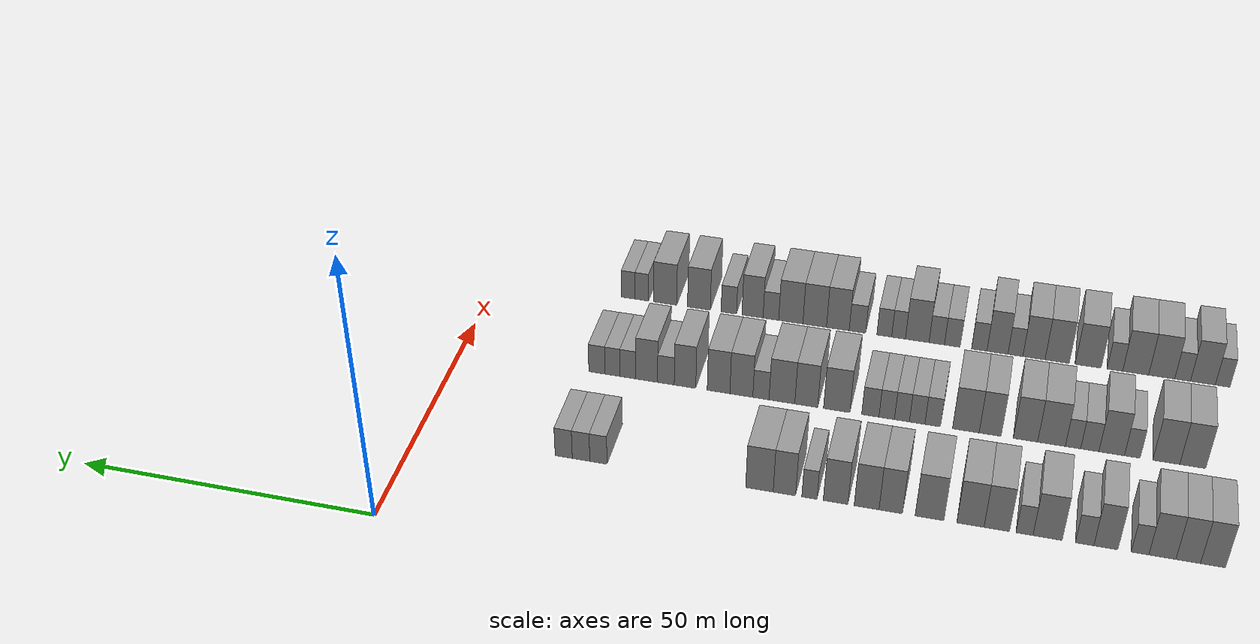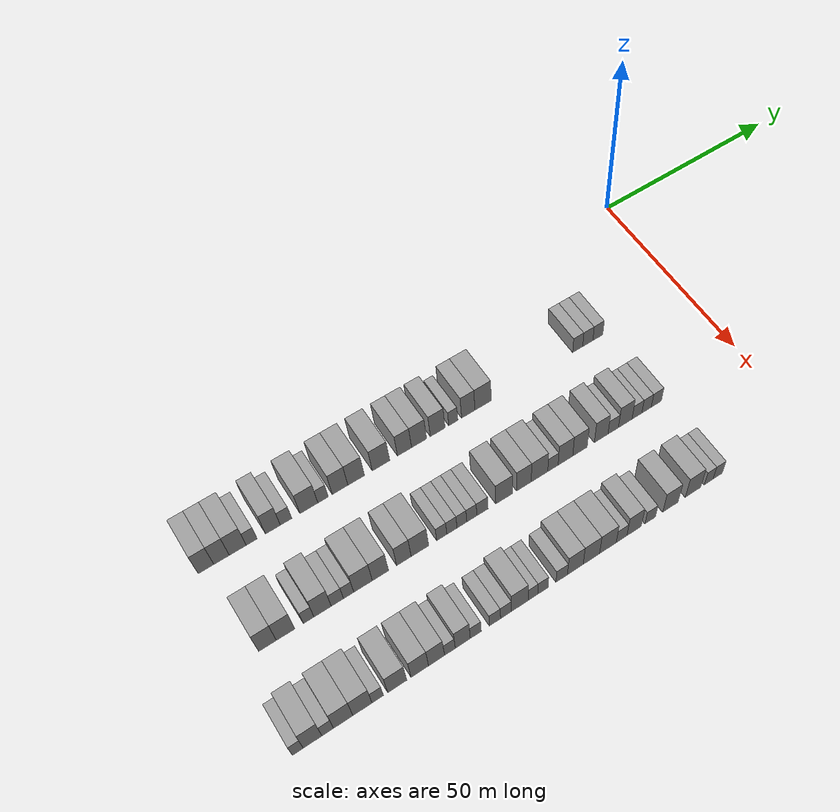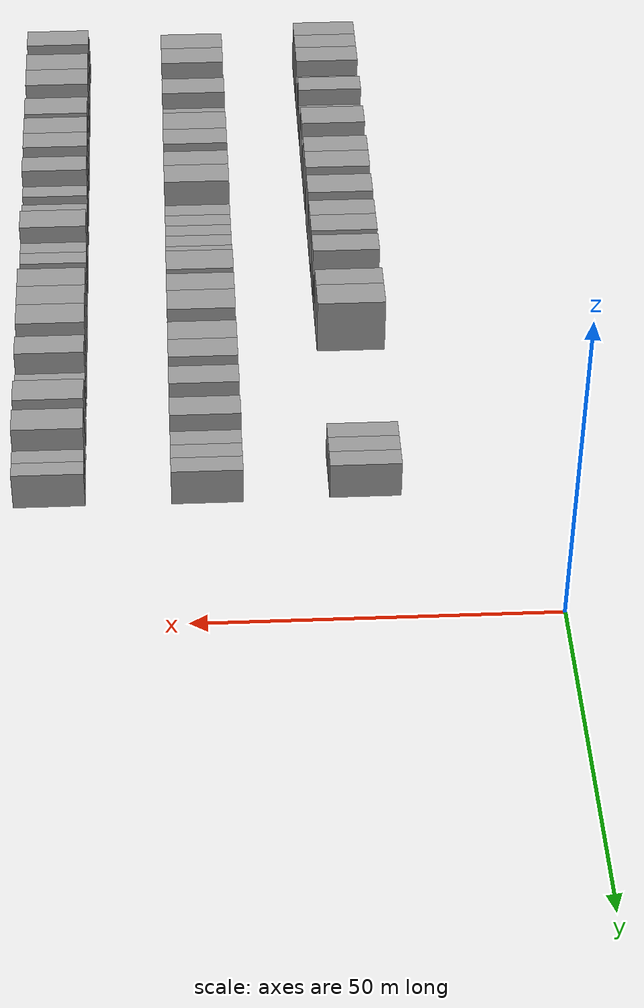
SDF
<sdf version="1.6">
 <world name="default">
  <model name="building_69">
   <static>1</static>
   <pose>25.0000 -127.5275 0 0.000000 0.000000 0.000000</pose>
   <link name="link">
    <pose>0 0 4.50 0 0 0</pose>
    <collision name="collision"><geometry><box><size>10.0000 3.6761 9.0000</size></box></geometry></collision>
    <visual name="visual">
     <cast_shadows>0</cast_shadows>
     <geometry><box><size>10.0000 3.6761 9.0000</size></box></geometry>
     <material>
      <script>
       <uri>model://grey_wall/materials/scripts</uri>
       <uri>model://grey_wall/materials/textures</uri>
       <name>vrc/grey_wall</name>
      </script>
     </material>
    </visual>
   </link>
  </model>
  <model name="building_70">
   <static>1</static>
   <pose>25.0000 -123.8749 0 0.000000 0.000000 0.000000</pose>
   <link name="link">
    <pose>0 0 4.50 0 0 0</pose>
    <collision name="collision"><geometry><box><size>10.0000 3.6291 9.0000</size></box></geometry></collision>
    <visual name="visual">
     <cast_shadows>0</cast_shadows>
     <geometry><box><size>10.0000 3.6291 9.0000</size></box></geometry>
     <material>
      <script>
       <uri>model://grey_wall/materials/scripts</uri>
       <uri>model://grey_wall/materials/textures</uri>
       <name>vrc/grey_wall</name>
      </script>
     </material>
    </visual>
   </link>
  </model>
  <model name="building_71">
   <static>1</static>
   <pose>25.0000 -120.0522 0 0.000000 0.000000 0.000000</pose>
   <link name="link">
    <pose>0 0 4.50 0 0 0</pose>
    <collision name="collision"><geometry><box><size>10.0000 4.0163 9.0000</size></box></geometry></collision>
    <visual name="visual">
     <cast_shadows>0</cast_shadows>
     <geometry><box><size>10.0000 4.0163 9.0000</size></box></geometry>
     <material>
      <script>
       <uri>model://grey_wall/materials/scripts</uri>
       <uri>model://grey_wall/materials/textures</uri>
       <name>vrc/grey_wall</name>
      </script>
     </material>
    </visual>
   </link>
  </model>
  <model name="building_72">
   <static>1</static>
   <pose>25.0000 -116.7305 0 0.000000 0.000000 0.000000</pose>
   <link name="link">
    <pose>0 0 3.00 0 0 0</pose>
    <collision name="collision"><geometry><box><size>10.0000 2.6270 6.0000</size></box></geometry></collision>
    <visual name="visual">
     <cast_shadows>0</cast_shadows>
     <geometry><box><size>10.0000 2.6270 6.0000</size></box></geometry>
     <material>
      <script>
       <uri>model://grey_wall/materials/scripts</uri>
       <uri>model://grey_wall/materials/textures</uri>
       <name>vrc/grey_wall</name>
      </script>
     </material>
    </visual>
   </link>
  </model>
  <model name="building_73">
   <static>1</static>
   <pose>25.0000 -111.6111 0 0.000000 0.000000 0.000000</pose>
   <link name="link">
    <pose>0 0 4.50 0 0 0</pose>
    <collision name="collision"><geometry><box><size>10.0000 3.6118 9.0000</size></box></geometry></collision>
    <visual name="visual">
     <cast_shadows>0</cast_shadows>
     <geometry><box><size>10.0000 3.6118 9.0000</size></box></geometry>
     <material>
      <script>
       <uri>model://grey_wall/materials/scripts</uri>
       <uri>model://grey_wall/materials/textures</uri>
       <name>vrc/grey_wall</name>
      </script>
     </material>
    </visual>
   </link>
  </model>
  <model name="building_74">
   <static>1</static>
   <pose>25.0000 -108.4069 0 0.000000 0.000000 0.000000</pose>
   <link name="link">
    <pose>0 0 3.00 0 0 0</pose>
    <collision name="collision"><geometry><box><size>10.0000 2.7967 6.0000</size></box></geometry></collision>
    <visual name="visual">
     <cast_shadows>0</cast_shadows>
     <geometry><box><size>10.0000 2.7967 6.0000</size></box></geometry>
     <material>
      <script>
       <uri>model://grey_wall/materials/scripts</uri>
       <uri>model://grey_wall/materials/textures</uri>
       <name>vrc/grey_wall</name>
      </script>
     </material>
    </visual>
   </link>
  </model>
  <model name="building_75">
   <static>1</static>
   <pose>25.0000 -102.7886 0 0.000000 0.000000 0.000000</pose>
   <link name="link">
    <pose>0 0 4.50 0 0 0</pose>
    <collision name="collision"><geometry><box><size>10.0000 4.4398 9.0000</size></box></geometry></collision>
    <visual name="visual">
     <cast_shadows>0</cast_shadows>
     <geometry><box><size>10.0000 4.4398 9.0000</size></box></geometry>
     <material>
      <script>
       <uri>model://grey_wall/materials/scripts</uri>
       <uri>model://grey_wall/materials/textures</uri>
       <name>vrc/grey_wall</name>
      </script>
     </material>
    </visual>
   </link>
  </model>
  <model name="building_76">
   <static>1</static>
   <pose>25.0000 -99.2753 0 0.000000 0.000000 0.000000</pose>
   <link name="link">
    <pose>0 0 3.00 0 0 0</pose>
    <collision name="collision"><geometry><box><size>10.0000 2.5870 6.0000</size></box></geometry></collision>
    <visual name="visual">
     <cast_shadows>0</cast_shadows>
     <geometry><box><size>10.0000 2.5870 6.0000</size></box></geometry>
     <material>
      <script>
       <uri>model://grey_wall/materials/scripts</uri>
       <uri>model://grey_wall/materials/textures</uri>
       <name>vrc/grey_wall</name>
      </script>
     </material>
    </visual>
   </link>
  </model>
  <model name="building_77">
   <static>1</static>
   <pose>25.0000 -95.0126 0 0.000000 0.000000 0.000000</pose>
   <link name="link">
    <pose>0 0 4.50 0 0 0</pose>
    <collision name="collision"><geometry><box><size>10.0000 3.9384 9.0000</size></box></geometry></collision>
    <visual name="visual">
     <cast_shadows>0</cast_shadows>
     <geometry><box><size>10.0000 3.9384 9.0000</size></box></geometry>
     <material>
      <script>
       <uri>model://grey_wall/materials/scripts</uri>
       <uri>model://grey_wall/materials/textures</uri>
       <name>vrc/grey_wall</name>
      </script>
     </material>
    </visual>
   </link>
  </model>
  <model name="building_78">
   <static>1</static>
   <pose>25.0000 -90.9410 0 0.000000 0.000000 0.000000</pose>
   <link name="link">
    <pose>0 0 4.50 0 0 0</pose>
    <collision name="collision"><geometry><box><size>10.0000 4.2049 9.0000</size></box></geometry></collision>
    <visual name="visual">
     <cast_shadows>0</cast_shadows>
     <geometry><box><size>10.0000 4.2049 9.0000</size></box></geometry>
     <material>
      <script>
       <uri>model://grey_wall/materials/scripts</uri>
       <uri>model://grey_wall/materials/textures</uri>
       <name>vrc/grey_wall</name>
      </script>
     </material>
    </visual>
   </link>
  </model>
  <model name="building_79">
   <static>1</static>
   <pose>25.0000 -84.5899 0 0.000000 0.000000 0.000000</pose>
   <link name="link">
    <pose>0 0 4.50 0 0 0</pose>
    <collision name="collision"><geometry><box><size>10.0000 4.4974 9.0000</size></box></geometry></collision>
    <visual name="visual">
     <cast_shadows>0</cast_shadows>
     <geometry><box><size>10.0000 4.4974 9.0000</size></box></geometry>
     <material>
      <script>
       <uri>model://grey_wall/materials/scripts</uri>
       <uri>model://grey_wall/materials/textures</uri>
       <name>vrc/grey_wall</name>
      </script>
     </material>
    </visual>
   </link>
  </model>
  <model name="building_80">
   <static>1</static>
   <pose>25.0000 -78.4971 0 0.000000 0.000000 0.000000</pose>
   <link name="link">
    <pose>0 0 4.50 0 0 0</pose>
    <collision name="collision"><geometry><box><size>10.0000 3.6880 9.0000</size></box></geometry></collision>
    <visual name="visual">
     <cast_shadows>0</cast_shadows>
     <geometry><box><size>10.0000 3.6880 9.0000</size></box></geometry>
     <material>
      <script>
       <uri>model://grey_wall/materials/scripts</uri>
       <uri>model://grey_wall/materials/textures</uri>
       <name>vrc/grey_wall</name>
      </script>
     </material>
    </visual>
   </link>
  </model>
  <model name="building_81">
   <static>1</static>
   <pose>25.0000 -74.6832 0 0.000000 0.000000 0.000000</pose>
   <link name="link">
    <pose>0 0 4.50 0 0 0</pose>
    <collision name="collision"><geometry><box><size>10.0000 3.9398 9.0000</size></box></geometry></collision>
    <visual name="visual">
     <cast_shadows>0</cast_shadows>
     <geometry><box><size>10.0000 3.9398 9.0000</size></box></geometry>
     <material>
      <script>
       <uri>model://grey_wall/materials/scripts</uri>
       <uri>model://grey_wall/materials/textures</uri>
       <name>vrc/grey_wall</name>
      </script>
     </material>
    </visual>
   </link>
  </model>
  <model name="building_82">
   <static>1</static>
   <pose>25.0000 -69.7548 0 0.000000 0.000000 0.000000</pose>
   <link name="link">
    <pose>0 0 4.50 0 0 0</pose>
    <collision name="collision"><geometry><box><size>10.0000 3.9169 9.0000</size></box></geometry></collision>
    <visual name="visual">
     <cast_shadows>0</cast_shadows>
     <geometry><box><size>10.0000 3.9169 9.0000</size></box></geometry>
     <material>
      <script>
       <uri>model://grey_wall/materials/scripts</uri>
       <uri>model://grey_wall/materials/textures</uri>
       <name>vrc/grey_wall</name>
      </script>
     </material>
    </visual>
   </link>
  </model>
  <model name="building_83">
   <static>1</static>
   <pose>25.0000 -65.5745 0 0.000000 0.000000 0.000000</pose>
   <link name="link">
    <pose>0 0 3.00 0 0 0</pose>
    <collision name="collision"><geometry><box><size>10.0000 2.4438 6.0000</size></box></geometry></collision>
    <visual name="visual">
     <cast_shadows>0</cast_shadows>
     <geometry><box><size>10.0000 2.4438 6.0000</size></box></geometry>
     <material>
      <script>
       <uri>model://grey_wall/materials/scripts</uri>
       <uri>model://grey_wall/materials/textures</uri>
       <name>vrc/grey_wall</name>
      </script>
     </material>
    </visual>
   </link>
  </model>
  <model name="building_84">
   <static>1</static>
   <pose>25.0000 -61.5470 0 0.000000 0.000000 0.000000</pose>
   <link name="link">
    <pose>0 0 4.50 0 0 0</pose>
    <collision name="collision"><geometry><box><size>10.0000 3.6112 9.0000</size></box></geometry></collision>
    <visual name="visual">
     <cast_shadows>0</cast_shadows>
     <geometry><box><size>10.0000 3.6112 9.0000</size></box></geometry>
     <material>
      <script>
       <uri>model://grey_wall/materials/scripts</uri>
       <uri>model://grey_wall/materials/textures</uri>
       <name>vrc/grey_wall</name>
      </script>
     </material>
    </visual>
   </link>
  </model>
  <model name="building_85">
   <static>1</static>
   <pose>25.0000 -57.5082 0 0.000000 0.000000 0.000000</pose>
   <link name="link">
    <pose>0 0 4.50 0 0 0</pose>
    <collision name="collision"><geometry><box><size>10.0000 4.4663 9.0000</size></box></geometry></collision>
    <visual name="visual">
     <cast_shadows>0</cast_shadows>
     <geometry><box><size>10.0000 4.4663 9.0000</size></box></geometry>
     <material>
      <script>
       <uri>model://grey_wall/materials/scripts</uri>
       <uri>model://grey_wall/materials/textures</uri>
       <name>vrc/grey_wall</name>
      </script>
     </material>
    </visual>
   </link>
  </model>
  <model name="building_86">
   <static>1</static>
   <pose>25.0000 -30.9335 0 0.000000 0.000000 0.000000</pose>
   <link name="link">
    <pose>0 0 3.00 0 0 0</pose>
    <collision name="collision"><geometry><box><size>10.0000 2.8944 6.0000</size></box></geometry></collision>
    <visual name="visual">
     <cast_shadows>0</cast_shadows>
     <geometry><box><size>10.0000 2.8944 6.0000</size></box></geometry>
     <material>
      <script>
       <uri>model://grey_wall/materials/scripts</uri>
       <uri>model://grey_wall/materials/textures</uri>
       <name>vrc/grey_wall</name>
      </script>
     </material>
    </visual>
   </link>
  </model>
  <model name="building_87">
   <static>1</static>
   <pose>25.0000 -28.0067 0 0.000000 0.000000 0.000000</pose>
   <link name="link">
    <pose>0 0 3.00 0 0 0</pose>
    <collision name="collision"><geometry><box><size>10.0000 2.9592 6.0000</size></box></geometry></collision>
    <visual name="visual">
     <cast_shadows>0</cast_shadows>
     <geometry><box><size>10.0000 2.9592 6.0000</size></box></geometry>
     <material>
      <script>
       <uri>model://grey_wall/materials/scripts</uri>
       <uri>model://grey_wall/materials/textures</uri>
       <name>vrc/grey_wall</name>
      </script>
     </material>
    </visual>
   </link>
  </model>
  <model name="building_88">
   <static>1</static>
   <pose>25.0000 -25.0780 0 0.000000 0.000000 0.000000</pose>
   <link name="link">
    <pose>0 0 3.00 0 0 0</pose>
    <collision name="collision"><geometry><box><size>10.0000 2.8982 6.0000</size></box></geometry></collision>
    <visual name="visual">
     <cast_shadows>0</cast_shadows>
     <geometry><box><size>10.0000 2.8982 6.0000</size></box></geometry>
     <material>
      <script>
       <uri>model://grey_wall/materials/scripts</uri>
       <uri>model://grey_wall/materials/textures</uri>
       <name>vrc/grey_wall</name>
      </script>
     </material>
    </visual>
   </link>
  </model>
  <model name="building_256">
   <static>1</static>
   <pose>47.0000 -124.7007 0 0.000000 0.000000 0.000000</pose>
   <link name="link">
    <pose>0 0 4.50 0 0 0</pose>
    <collision name="collision"><geometry><box><size>10.0000 4.0787 9.0000</size></box></geometry></collision>
    <visual name="visual">
     <cast_shadows>0</cast_shadows>
     <geometry><box><size>10.0000 4.0787 9.0000</size></box></geometry>
     <material>
      <script>
       <uri>model://grey_wall/materials/scripts</uri>
       <uri>model://grey_wall/materials/textures</uri>
       <name>vrc/grey_wall</name>
      </script>
     </material>
    </visual>
   </link>
  </model>
  <model name="building_257">
   <static>1</static>
   <pose>47.0000 -120.5277 0 0.000000 0.000000 0.000000</pose>
   <link name="link">
    <pose>0 0 4.50 0 0 0</pose>
    <collision name="collision"><geometry><box><size>10.0000 4.2673 9.0000</size></box></geometry></collision>
    <visual name="visual">
     <cast_shadows>0</cast_shadows>
     <geometry><box><size>10.0000 4.2673 9.0000</size></box></geometry>
     <material>
      <script>
       <uri>model://grey_wall/materials/scripts</uri>
       <uri>model://grey_wall/materials/textures</uri>
       <name>vrc/grey_wall</name>
      </script>
     </material>
    </visual>
   </link>
  </model>
  <model name="building_258">
   <static>1</static>
   <pose>47.0000 -115.1476 0 0.000000 0.000000 0.000000</pose>
   <link name="link">
    <pose>0 0 3.00 0 0 0</pose>
    <collision name="collision"><geometry><box><size>10.0000 2.4930 6.0000</size></box></geometry></collision>
    <visual name="visual">
     <cast_shadows>0</cast_shadows>
     <geometry><box><size>10.0000 2.4930 6.0000</size></box></geometry>
     <material>
      <script>
       <uri>model://grey_wall/materials/scripts</uri>
       <uri>model://grey_wall/materials/textures</uri>
       <name>vrc/grey_wall</name>
      </script>
     </material>
    </visual>
   </link>
  </model>
  <model name="building_259">
   <static>1</static>
   <pose>47.0000 -111.8513 0 0.000000 0.000000 0.000000</pose>
   <link name="link">
    <pose>0 0 4.50 0 0 0</pose>
    <collision name="collision"><geometry><box><size>10.0000 4.0994 9.0000</size></box></geometry></collision>
    <visual name="visual">
     <cast_shadows>0</cast_shadows>
     <geometry><box><size>10.0000 4.0994 9.0000</size></box></geometry>
     <material>
      <script>
       <uri>model://grey_wall/materials/scripts</uri>
       <uri>model://grey_wall/materials/textures</uri>
       <name>vrc/grey_wall</name>
      </script>
     </material>
    </visual>
   </link>
  </model>
  <model name="building_260">
   <static>1</static>
   <pose>47.0000 -108.3409 0 0.000000 0.000000 0.000000</pose>
   <link name="link">
    <pose>0 0 3.00 0 0 0</pose>
    <collision name="collision"><geometry><box><size>10.0000 2.9214 6.0000</size></box></geometry></collision>
    <visual name="visual">
     <cast_shadows>0</cast_shadows>
     <geometry><box><size>10.0000 2.9214 6.0000</size></box></geometry>
     <material>
      <script>
       <uri>model://grey_wall/materials/scripts</uri>
       <uri>model://grey_wall/materials/textures</uri>
       <name>vrc/grey_wall</name>
      </script>
     </material>
    </visual>
   </link>
  </model>
  <model name="building_261">
   <static>1</static>
   <pose>47.0000 -105.6420 0 0.000000 0.000000 0.000000</pose>
   <link name="link">
    <pose>0 0 3.00 0 0 0</pose>
    <collision name="collision"><geometry><box><size>10.0000 2.4766 6.0000</size></box></geometry></collision>
    <visual name="visual">
     <cast_shadows>0</cast_shadows>
     <geometry><box><size>10.0000 2.4766 6.0000</size></box></geometry>
     <material>
      <script>
       <uri>model://grey_wall/materials/scripts</uri>
       <uri>model://grey_wall/materials/textures</uri>
       <name>vrc/grey_wall</name>
      </script>
     </material>
    </visual>
   </link>
  </model>
  <model name="building_262">
   <static>1</static>
   <pose>47.0000 -102.1589 0 0.000000 0.000000 0.000000</pose>
   <link name="link">
    <pose>0 0 4.50 0 0 0</pose>
    <collision name="collision"><geometry><box><size>10.0000 4.4896 9.0000</size></box></geometry></collision>
    <visual name="visual">
     <cast_shadows>0</cast_shadows>
     <geometry><box><size>10.0000 4.4896 9.0000</size></box></geometry>
     <material>
      <script>
       <uri>model://grey_wall/materials/scripts</uri>
       <uri>model://grey_wall/materials/textures</uri>
       <name>vrc/grey_wall</name>
      </script>
     </material>
    </visual>
   </link>
  </model>
  <model name="building_263">
   <static>1</static>
   <pose>47.0000 -97.9338 0 0.000000 0.000000 0.000000</pose>
   <link name="link">
    <pose>0 0 4.50 0 0 0</pose>
    <collision name="collision"><geometry><box><size>10.0000 3.9607 9.0000</size></box></geometry></collision>
    <visual name="visual">
     <cast_shadows>0</cast_shadows>
     <geometry><box><size>10.0000 3.9607 9.0000</size></box></geometry>
     <material>
      <script>
       <uri>model://grey_wall/materials/scripts</uri>
       <uri>model://grey_wall/materials/textures</uri>
       <name>vrc/grey_wall</name>
      </script>
     </material>
    </visual>
   </link>
  </model>
  <model name="building_264">
   <static>1</static>
   <pose>47.0000 -92.1498 0 0.000000 0.000000 0.000000</pose>
   <link name="link">
    <pose>0 0 4.50 0 0 0</pose>
    <collision name="collision"><geometry><box><size>10.0000 3.6073 9.0000</size></box></geometry></collision>
    <visual name="visual">
     <cast_shadows>0</cast_shadows>
     <geometry><box><size>10.0000 3.6073 9.0000</size></box></geometry>
     <material>
      <script>
       <uri>model://grey_wall/materials/scripts</uri>
       <uri>model://grey_wall/materials/textures</uri>
       <name>vrc/grey_wall</name>
      </script>
     </material>
    </visual>
   </link>
  </model>
  <model name="building_265">
   <static>1</static>
   <pose>47.0000 -88.1483 0 0.000000 0.000000 0.000000</pose>
   <link name="link">
    <pose>0 0 4.50 0 0 0</pose>
    <collision name="collision"><geometry><box><size>10.0000 4.3957 9.0000</size></box></geometry></collision>
    <visual name="visual">
     <cast_shadows>0</cast_shadows>
     <geometry><box><size>10.0000 4.3957 9.0000</size></box></geometry>
     <material>
      <script>
       <uri>model://grey_wall/materials/scripts</uri>
       <uri>model://grey_wall/materials/textures</uri>
       <name>vrc/grey_wall</name>
      </script>
     </material>
    </visual>
   </link>
  </model>
  <model name="building_266">
   <static>1</static>
   <pose>47.0000 -82.6605 0 0.000000 0.000000 0.000000</pose>
   <link name="link">
    <pose>0 0 3.00 0 0 0</pose>
    <collision name="collision"><geometry><box><size>10.0000 2.5800 6.0000</size></box></geometry></collision>
    <visual name="visual">
     <cast_shadows>0</cast_shadows>
     <geometry><box><size>10.0000 2.5800 6.0000</size></box></geometry>
     <material>
      <script>
       <uri>model://grey_wall/materials/scripts</uri>
       <uri>model://grey_wall/materials/textures</uri>
       <name>vrc/grey_wall</name>
      </script>
     </material>
    </visual>
   </link>
  </model>
  <model name="building_267">
   <static>1</static>
   <pose>47.0000 -80.0759 0 0.000000 0.000000 0.000000</pose>
   <link name="link">
    <pose>0 0 3.00 0 0 0</pose>
    <collision name="collision"><geometry><box><size>10.0000 2.5891 6.0000</size></box></geometry></collision>
    <visual name="visual">
     <cast_shadows>0</cast_shadows>
     <geometry><box><size>10.0000 2.5891 6.0000</size></box></geometry>
     <material>
      <script>
       <uri>model://grey_wall/materials/scripts</uri>
       <uri>model://grey_wall/materials/textures</uri>
       <name>vrc/grey_wall</name>
      </script>
     </material>
    </visual>
   </link>
  </model>
  <model name="building_268">
   <static>1</static>
   <pose>47.0000 -77.5314 0 0.000000 0.000000 0.000000</pose>
   <link name="link">
    <pose>0 0 3.00 0 0 0</pose>
    <collision name="collision"><geometry><box><size>10.0000 2.4999 6.0000</size></box></geometry></collision>
    <visual name="visual">
     <cast_shadows>0</cast_shadows>
     <geometry><box><size>10.0000 2.4999 6.0000</size></box></geometry>
     <material>
      <script>
       <uri>model://grey_wall/materials/scripts</uri>
       <uri>model://grey_wall/materials/textures</uri>
       <name>vrc/grey_wall</name>
      </script>
     </material>
    </visual>
   </link>
  </model>
  <model name="building_269">
   <static>1</static>
   <pose>47.0000 -74.9834 0 0.000000 0.000000 0.000000</pose>
   <link name="link">
    <pose>0 0 3.00 0 0 0</pose>
    <collision name="collision"><geometry><box><size>10.0000 2.5962 6.0000</size></box></geometry></collision>
    <visual name="visual">
     <cast_shadows>0</cast_shadows>
     <geometry><box><size>10.0000 2.5962 6.0000</size></box></geometry>
     <material>
      <script>
       <uri>model://grey_wall/materials/scripts</uri>
       <uri>model://grey_wall/materials/textures</uri>
       <name>vrc/grey_wall</name>
      </script>
     </material>
    </visual>
   </link>
  </model>
  <model name="building_270">
   <static>1</static>
   <pose>47.0000 -72.2313 0 0.000000 0.000000 0.000000</pose>
   <link name="link">
    <pose>0 0 3.00 0 0 0</pose>
    <collision name="collision"><geometry><box><size>10.0000 2.9080 6.0000</size></box></geometry></collision>
    <visual name="visual">
     <cast_shadows>0</cast_shadows>
     <geometry><box><size>10.0000 2.9080 6.0000</size></box></geometry>
     <material>
      <script>
       <uri>model://grey_wall/materials/scripts</uri>
       <uri>model://grey_wall/materials/textures</uri>
       <name>vrc/grey_wall</name>
      </script>
     </material>
    </visual>
   </link>
  </model>
  <model name="building_271">
   <static>1</static>
   <pose>47.0000 -66.5383 0 0.000000 0.000000 0.000000</pose>
   <link name="link">
    <pose>0 0 4.50 0 0 0</pose>
    <collision name="collision"><geometry><box><size>10.0000 4.4780 9.0000</size></box></geometry></collision>
    <visual name="visual">
     <cast_shadows>0</cast_shadows>
     <geometry><box><size>10.0000 4.4780 9.0000</size></box></geometry>
     <material>
      <script>
       <uri>model://grey_wall/materials/scripts</uri>
       <uri>model://grey_wall/materials/textures</uri>
       <name>vrc/grey_wall</name>
      </script>
     </material>
    </visual>
   </link>
  </model>
  <model name="building_272">
   <static>1</static>
   <pose>47.0000 -61.3468 0 0.000000 0.000000 0.000000</pose>
   <link name="link">
    <pose>0 0 4.50 0 0 0</pose>
    <collision name="collision"><geometry><box><size>10.0000 3.9050 9.0000</size></box></geometry></collision>
    <visual name="visual">
     <cast_shadows>0</cast_shadows>
     <geometry><box><size>10.0000 3.9050 9.0000</size></box></geometry>
     <material>
      <script>
       <uri>model://grey_wall/materials/scripts</uri>
       <uri>model://grey_wall/materials/textures</uri>
       <name>vrc/grey_wall</name>
      </script>
     </material>
    </visual>
   </link>
  </model>
  <model name="building_273">
   <static>1</static>
   <pose>47.0000 -57.1787 0 0.000000 0.000000 0.000000</pose>
   <link name="link">
    <pose>0 0 4.50 0 0 0</pose>
    <collision name="collision"><geometry><box><size>10.0000 4.4312 9.0000</size></box></geometry></collision>
    <visual name="visual">
     <cast_shadows>0</cast_shadows>
     <geometry><box><size>10.0000 4.4312 9.0000</size></box></geometry>
     <material>
      <script>
       <uri>model://grey_wall/materials/scripts</uri>
       <uri>model://grey_wall/materials/textures</uri>
       <name>vrc/grey_wall</name>
      </script>
     </material>
    </visual>
   </link>
  </model>
  <model name="building_274">
   <static>1</static>
   <pose>47.0000 -53.5641 0 0.000000 0.000000 0.000000</pose>
   <link name="link">
    <pose>0 0 3.00 0 0 0</pose>
    <collision name="collision"><geometry><box><size>10.0000 2.7979 6.0000</size></box></geometry></collision>
    <visual name="visual">
     <cast_shadows>0</cast_shadows>
     <geometry><box><size>10.0000 2.7979 6.0000</size></box></geometry>
     <material>
      <script>
       <uri>model://grey_wall/materials/scripts</uri>
       <uri>model://grey_wall/materials/textures</uri>
       <name>vrc/grey_wall</name>
      </script>
     </material>
    </visual>
   </link>
  </model>
  <model name="building_275">
   <static>1</static>
   <pose>47.0000 -50.1755 0 0.000000 0.000000 0.000000</pose>
   <link name="link">
    <pose>0 0 4.50 0 0 0</pose>
    <collision name="collision"><geometry><box><size>10.0000 3.9793 9.0000</size></box></geometry></collision>
    <visual name="visual">
     <cast_shadows>0</cast_shadows>
     <geometry><box><size>10.0000 3.9793 9.0000</size></box></geometry>
     <material>
      <script>
       <uri>model://grey_wall/materials/scripts</uri>
       <uri>model://grey_wall/materials/textures</uri>
       <name>vrc/grey_wall</name>
      </script>
     </material>
    </visual>
   </link>
  </model>
  <model name="building_276">
   <static>1</static>
   <pose>47.0000 -46.2096 0 0.000000 0.000000 0.000000</pose>
   <link name="link">
    <pose>0 0 4.50 0 0 0</pose>
    <collision name="collision"><geometry><box><size>10.0000 3.9526 9.0000</size></box></geometry></collision>
    <visual name="visual">
     <cast_shadows>0</cast_shadows>
     <geometry><box><size>10.0000 3.9526 9.0000</size></box></geometry>
     <material>
      <script>
       <uri>model://grey_wall/materials/scripts</uri>
       <uri>model://grey_wall/materials/textures</uri>
       <name>vrc/grey_wall</name>
      </script>
     </material>
    </visual>
   </link>
  </model>
  <model name="building_277">
   <static>1</static>
   <pose>47.0000 -40.3421 0 0.000000 0.000000 0.000000</pose>
   <link name="link">
    <pose>0 0 4.50 0 0 0</pose>
    <collision name="collision"><geometry><box><size>10.0000 3.7823 9.0000</size></box></geometry></collision>
    <visual name="visual">
     <cast_shadows>0</cast_shadows>
     <geometry><box><size>10.0000 3.7823 9.0000</size></box></geometry>
     <material>
      <script>
       <uri>model://grey_wall/materials/scripts</uri>
       <uri>model://grey_wall/materials/textures</uri>
       <name>vrc/grey_wall</name>
      </script>
     </material>
    </visual>
   </link>
  </model>
  <model name="building_278">
   <static>1</static>
   <pose>47.0000 -36.9890 0 0.000000 0.000000 0.000000</pose>
   <link name="link">
    <pose>0 0 3.00 0 0 0</pose>
    <collision name="collision"><geometry><box><size>10.0000 2.9237 6.0000</size></box></geometry></collision>
    <visual name="visual">
     <cast_shadows>0</cast_shadows>
     <geometry><box><size>10.0000 2.9237 6.0000</size></box></geometry>
     <material>
      <script>
       <uri>model://grey_wall/materials/scripts</uri>
       <uri>model://grey_wall/materials/textures</uri>
       <name>vrc/grey_wall</name>
      </script>
     </material>
    </visual>
   </link>
  </model>
  <model name="building_279">
   <static>1</static>
   <pose>47.0000 -33.6004 0 0.000000 0.000000 0.000000</pose>
   <link name="link">
    <pose>0 0 4.50 0 0 0</pose>
    <collision name="collision"><geometry><box><size>10.0000 3.8535 9.0000</size></box></geometry></collision>
    <visual name="visual">
     <cast_shadows>0</cast_shadows>
     <geometry><box><size>10.0000 3.8535 9.0000</size></box></geometry>
     <material>
      <script>
       <uri>model://grey_wall/materials/scripts</uri>
       <uri>model://grey_wall/materials/textures</uri>
       <name>vrc/grey_wall</name>
      </script>
     </material>
    </visual>
   </link>
  </model>
  <model name="building_280">
   <static>1</static>
   <pose>47.0000 -30.2748 0 0.000000 0.000000 0.000000</pose>
   <link name="link">
    <pose>0 0 3.00 0 0 0</pose>
    <collision name="collision"><geometry><box><size>10.0000 2.7978 6.0000</size></box></geometry></collision>
    <visual name="visual">
     <cast_shadows>0</cast_shadows>
     <geometry><box><size>10.0000 2.7978 6.0000</size></box></geometry>
     <material>
      <script>
       <uri>model://grey_wall/materials/scripts</uri>
       <uri>model://grey_wall/materials/textures</uri>
       <name>vrc/grey_wall</name>
      </script>
     </material>
    </visual>
   </link>
  </model>
  <model name="building_281">
   <static>1</static>
   <pose>47.0000 -27.5278 0 0.000000 0.000000 0.000000</pose>
   <link name="link">
    <pose>0 0 3.00 0 0 0</pose>
    <collision name="collision"><geometry><box><size>10.0000 2.6961 6.0000</size></box></geometry></collision>
    <visual name="visual">
     <cast_shadows>0</cast_shadows>
     <geometry><box><size>10.0000 2.6961 6.0000</size></box></geometry>
     <material>
      <script>
       <uri>model://grey_wall/materials/scripts</uri>
       <uri>model://grey_wall/materials/textures</uri>
       <name>vrc/grey_wall</name>
      </script>
     </material>
    </visual>
   </link>
  </model>
  <model name="building_282">
   <static>1</static>
   <pose>47.0000 -24.7297 0 0.000000 0.000000 0.000000</pose>
   <link name="link">
    <pose>0 0 3.00 0 0 0</pose>
    <collision name="collision"><geometry><box><size>10.0000 2.9001 6.0000</size></box></geometry></collision>
    <visual name="visual">
     <cast_shadows>0</cast_shadows>
     <geometry><box><size>10.0000 2.9001 6.0000</size></box></geometry>
     <material>
      <script>
       <uri>model://grey_wall/materials/scripts</uri>
       <uri>model://grey_wall/materials/textures</uri>
       <name>vrc/grey_wall</name>
      </script>
     </material>
    </visual>
   </link>
  </model>
  <model name="building_444">
   <static>1</static>
   <pose>69.0000 -129.8212 0 0.000000 0.000000 0.000000</pose>
   <link name="link">
    <pose>0 0 3.00 0 0 0</pose>
    <collision name="collision"><geometry><box><size>10.0000 2.4274 6.0000</size></box></geometry></collision>
    <visual name="visual">
     <cast_shadows>0</cast_shadows>
     <geometry><box><size>10.0000 2.4274 6.0000</size></box></geometry>
     <material>
      <script>
       <uri>model://grey_wall/materials/scripts</uri>
       <uri>model://grey_wall/materials/textures</uri>
       <name>vrc/grey_wall</name>
      </script>
     </material>
    </visual>
   </link>
  </model>
  <model name="building_445">
   <static>1</static>
   <pose>69.0000 -126.5369 0 0.000000 0.000000 0.000000</pose>
   <link name="link">
    <pose>0 0 4.50 0 0 0</pose>
    <collision name="collision"><geometry><box><size>10.0000 4.1411 9.0000</size></box></geometry></collision>
    <visual name="visual">
     <cast_shadows>0</cast_shadows>
     <geometry><box><size>10.0000 4.1411 9.0000</size></box></geometry>
     <material>
      <script>
       <uri>model://grey_wall/materials/scripts</uri>
       <uri>model://grey_wall/materials/textures</uri>
       <name>vrc/grey_wall</name>
      </script>
     </material>
    </visual>
   </link>
  </model>
  <model name="building_446">
   <static>1</static>
   <pose>69.0000 -123.1523 0 0.000000 0.000000 0.000000</pose>
   <link name="link">
    <pose>0 0 3.00 0 0 0</pose>
    <collision name="collision"><geometry><box><size>10.0000 2.6281 6.0000</size></box></geometry></collision>
    <visual name="visual">
     <cast_shadows>0</cast_shadows>
     <geometry><box><size>10.0000 2.6281 6.0000</size></box></geometry>
     <material>
      <script>
       <uri>model://grey_wall/materials/scripts</uri>
       <uri>model://grey_wall/materials/textures</uri>
       <name>vrc/grey_wall</name>
      </script>
     </material>
    </visual>
   </link>
  </model>
  <model name="building_447">
   <static>1</static>
   <pose>69.0000 -119.6462 0 0.000000 0.000000 0.000000</pose>
   <link name="link">
    <pose>0 0 4.50 0 0 0</pose>
    <collision name="collision"><geometry><box><size>10.0000 4.3842 9.0000</size></box></geometry></collision>
    <visual name="visual">
     <cast_shadows>0</cast_shadows>
     <geometry><box><size>10.0000 4.3842 9.0000</size></box></geometry>
     <material>
      <script>
       <uri>model://grey_wall/materials/scripts</uri>
       <uri>model://grey_wall/materials/textures</uri>
       <name>vrc/grey_wall</name>
      </script>
     </material>
    </visual>
   </link>
  </model>
  <model name="building_448">
   <static>1</static>
   <pose>69.0000 -115.2644 0 0.000000 0.000000 0.000000</pose>
   <link name="link">
    <pose>0 0 4.50 0 0 0</pose>
    <collision name="collision"><geometry><box><size>10.0000 4.3795 9.0000</size></box></geometry></collision>
    <visual name="visual">
     <cast_shadows>0</cast_shadows>
     <geometry><box><size>10.0000 4.3795 9.0000</size></box></geometry>
     <material>
      <script>
       <uri>model://grey_wall/materials/scripts</uri>
       <uri>model://grey_wall/materials/textures</uri>
       <name>vrc/grey_wall</name>
      </script>
     </material>
    </visual>
   </link>
  </model>
  <model name="building_449">
   <static>1</static>
   <pose>69.0000 -111.7525 0 0.000000 0.000000 0.000000</pose>
   <link name="link">
    <pose>0 0 3.00 0 0 0</pose>
    <collision name="collision"><geometry><box><size>10.0000 2.6443 6.0000</size></box></geometry></collision>
    <visual name="visual">
     <cast_shadows>0</cast_shadows>
     <geometry><box><size>10.0000 2.6443 6.0000</size></box></geometry>
     <material>
      <script>
       <uri>model://grey_wall/materials/scripts</uri>
       <uri>model://grey_wall/materials/textures</uri>
       <name>vrc/grey_wall</name>
      </script>
     </material>
    </visual>
   </link>
  </model>
  <model name="building_450">
   <static>1</static>
   <pose>69.0000 -107.2033 0 0.000000 0.000000 0.000000</pose>
   <link name="link">
    <pose>0 0 4.50 0 0 0</pose>
    <collision name="collision"><geometry><box><size>10.0000 4.4539 9.0000</size></box></geometry></collision>
    <visual name="visual">
     <cast_shadows>0</cast_shadows>
     <geometry><box><size>10.0000 4.4539 9.0000</size></box></geometry>
     <material>
      <script>
       <uri>model://grey_wall/materials/scripts</uri>
       <uri>model://grey_wall/materials/textures</uri>
       <name>vrc/grey_wall</name>
      </script>
     </material>
    </visual>
   </link>
  </model>
  <model name="building_451">
   <static>1</static>
   <pose>69.0000 -101.8969 0 0.000000 0.000000 0.000000</pose>
   <link name="link">
    <pose>0 0 4.50 0 0 0</pose>
    <collision name="collision"><geometry><box><size>10.0000 4.1590 9.0000</size></box></geometry></collision>
    <visual name="visual">
     <cast_shadows>0</cast_shadows>
     <geometry><box><size>10.0000 4.1590 9.0000</size></box></geometry>
     <material>
      <script>
       <uri>model://grey_wall/materials/scripts</uri>
       <uri>model://grey_wall/materials/textures</uri>
       <name>vrc/grey_wall</name>
      </script>
     </material>
    </visual>
   </link>
  </model>
  <model name="building_452">
   <static>1</static>
   <pose>69.0000 -97.9048 0 0.000000 0.000000 0.000000</pose>
   <link name="link">
    <pose>0 0 4.50 0 0 0</pose>
    <collision name="collision"><geometry><box><size>10.0000 3.8252 9.0000</size></box></geometry></collision>
    <visual name="visual">
     <cast_shadows>0</cast_shadows>
     <geometry><box><size>10.0000 3.8252 9.0000</size></box></geometry>
     <material>
      <script>
       <uri>model://grey_wall/materials/scripts</uri>
       <uri>model://grey_wall/materials/textures</uri>
       <name>vrc/grey_wall</name>
      </script>
     </material>
    </visual>
   </link>
  </model>
  <model name="building_453">
   <static>1</static>
   <pose>69.0000 -94.6984 0 0.000000 0.000000 0.000000</pose>
   <link name="link">
    <pose>0 0 3.00 0 0 0</pose>
    <collision name="collision"><geometry><box><size>10.0000 2.5877 6.0000</size></box></geometry></collision>
    <visual name="visual">
     <cast_shadows>0</cast_shadows>
     <geometry><box><size>10.0000 2.5877 6.0000</size></box></geometry>
     <material>
      <script>
       <uri>model://grey_wall/materials/scripts</uri>
       <uri>model://grey_wall/materials/textures</uri>
       <name>vrc/grey_wall</name>
      </script>
     </material>
    </visual>
   </link>
  </model>
  <model name="building_454">
   <static>1</static>
   <pose>69.0000 -91.5819 0 0.000000 0.000000 0.000000</pose>
   <link name="link">
    <pose>0 0 4.50 0 0 0</pose>
    <collision name="collision"><geometry><box><size>10.0000 3.6453 9.0000</size></box></geometry></collision>
    <visual name="visual">
     <cast_shadows>0</cast_shadows>
     <geometry><box><size>10.0000 3.6453 9.0000</size></box></geometry>
     <material>
      <script>
       <uri>model://grey_wall/materials/scripts</uri>
       <uri>model://grey_wall/materials/textures</uri>
       <name>vrc/grey_wall</name>
      </script>
     </material>
    </visual>
   </link>
  </model>
  <model name="building_455">
   <static>1</static>
   <pose>69.0000 -88.4177 0 0.000000 0.000000 0.000000</pose>
   <link name="link">
    <pose>0 0 3.00 0 0 0</pose>
    <collision name="collision"><geometry><box><size>10.0000 2.6831 6.0000</size></box></geometry></collision>
    <visual name="visual">
     <cast_shadows>0</cast_shadows>
     <geometry><box><size>10.0000 2.6831 6.0000</size></box></geometry>
     <material>
      <script>
       <uri>model://grey_wall/materials/scripts</uri>
       <uri>model://grey_wall/materials/textures</uri>
       <name>vrc/grey_wall</name>
      </script>
     </material>
    </visual>
   </link>
  </model>
  <model name="building_456">
   <static>1</static>
   <pose>69.0000 -83.6950 0 0.000000 0.000000 0.000000</pose>
   <link name="link">
    <pose>0 0 3.00 0 0 0</pose>
    <collision name="collision"><geometry><box><size>10.0000 2.7623 6.0000</size></box></geometry></collision>
    <visual name="visual">
     <cast_shadows>0</cast_shadows>
     <geometry><box><size>10.0000 2.7623 6.0000</size></box></geometry>
     <material>
      <script>
       <uri>model://grey_wall/materials/scripts</uri>
       <uri>model://grey_wall/materials/textures</uri>
       <name>vrc/grey_wall</name>
      </script>
     </material>
    </visual>
   </link>
  </model>
  <model name="building_457">
   <static>1</static>
   <pose>69.0000 -80.9562 0 0.000000 0.000000 0.000000</pose>
   <link name="link">
    <pose>0 0 3.00 0 0 0</pose>
    <collision name="collision"><geometry><box><size>10.0000 2.7151 6.0000</size></box></geometry></collision>
    <visual name="visual">
     <cast_shadows>0</cast_shadows>
     <geometry><box><size>10.0000 2.7151 6.0000</size></box></geometry>
     <material>
      <script>
       <uri>model://grey_wall/materials/scripts</uri>
       <uri>model://grey_wall/materials/textures</uri>
       <name>vrc/grey_wall</name>
      </script>
     </material>
    </visual>
   </link>
  </model>
  <model name="building_458">
   <static>1</static>
   <pose>69.0000 -77.5084 0 0.000000 0.000000 0.000000</pose>
   <link name="link">
    <pose>0 0 4.50 0 0 0</pose>
    <collision name="collision"><geometry><box><size>10.0000 4.1806 9.0000</size></box></geometry></collision>
    <visual name="visual">
     <cast_shadows>0</cast_shadows>
     <geometry><box><size>10.0000 4.1806 9.0000</size></box></geometry>
     <material>
      <script>
       <uri>model://grey_wall/materials/scripts</uri>
       <uri>model://grey_wall/materials/textures</uri>
       <name>vrc/grey_wall</name>
      </script>
     </material>
    </visual>
   </link>
  </model>
  <model name="building_459">
   <static>1</static>
   <pose>69.0000 -74.1992 0 0.000000 0.000000 0.000000</pose>
   <link name="link">
    <pose>0 0 3.00 0 0 0</pose>
    <collision name="collision"><geometry><box><size>10.0000 2.4377 6.0000</size></box></geometry></collision>
    <visual name="visual">
     <cast_shadows>0</cast_shadows>
     <geometry><box><size>10.0000 2.4377 6.0000</size></box></geometry>
     <material>
      <script>
       <uri>model://grey_wall/materials/scripts</uri>
       <uri>model://grey_wall/materials/textures</uri>
       <name>vrc/grey_wall</name>
      </script>
     </material>
    </visual>
   </link>
  </model>
  <model name="building_460">
   <static>1</static>
   <pose>69.0000 -71.6578 0 0.000000 0.000000 0.000000</pose>
   <link name="link">
    <pose>0 0 3.00 0 0 0</pose>
    <collision name="collision"><geometry><box><size>10.0000 2.6452 6.0000</size></box></geometry></collision>
    <visual name="visual">
     <cast_shadows>0</cast_shadows>
     <geometry><box><size>10.0000 2.6452 6.0000</size></box></geometry>
     <material>
      <script>
       <uri>model://grey_wall/materials/scripts</uri>
       <uri>model://grey_wall/materials/textures</uri>
       <name>vrc/grey_wall</name>
      </script>
     </material>
    </visual>
   </link>
  </model>
  <model name="building_461">
   <static>1</static>
   <pose>69.0000 -66.8563 0 0.000000 0.000000 0.000000</pose>
   <link name="link">
    <pose>0 0 3.00 0 0 0</pose>
    <collision name="collision"><geometry><box><size>10.0000 2.9577 6.0000</size></box></geometry></collision>
    <visual name="visual">
     <cast_shadows>0</cast_shadows>
     <geometry><box><size>10.0000 2.9577 6.0000</size></box></geometry>
     <material>
      <script>
       <uri>model://grey_wall/materials/scripts</uri>
       <uri>model://grey_wall/materials/textures</uri>
       <name>vrc/grey_wall</name>
      </script>
     </material>
    </visual>
   </link>
  </model>
  <model name="building_462">
   <static>1</static>
   <pose>69.0000 -63.3344 0 0.000000 0.000000 0.000000</pose>
   <link name="link">
    <pose>0 0 4.50 0 0 0</pose>
    <collision name="collision"><geometry><box><size>10.0000 4.0861 9.0000</size></box></geometry></collision>
    <visual name="visual">
     <cast_shadows>0</cast_shadows>
     <geometry><box><size>10.0000 4.0861 9.0000</size></box></geometry>
     <material>
      <script>
       <uri>model://grey_wall/materials/scripts</uri>
       <uri>model://grey_wall/materials/textures</uri>
       <name>vrc/grey_wall</name>
      </script>
     </material>
    </visual>
   </link>
  </model>
  <model name="building_463">
   <static>1</static>
   <pose>69.0000 -59.1514 0 0.000000 0.000000 0.000000</pose>
   <link name="link">
    <pose>0 0 4.50 0 0 0</pose>
    <collision name="collision"><geometry><box><size>10.0000 4.2797 9.0000</size></box></geometry></collision>
    <visual name="visual">
     <cast_shadows>0</cast_shadows>
     <geometry><box><size>10.0000 4.2797 9.0000</size></box></geometry>
     <material>
      <script>
       <uri>model://grey_wall/materials/scripts</uri>
       <uri>model://grey_wall/materials/textures</uri>
       <name>vrc/grey_wall</name>
      </script>
     </material>
    </visual>
   </link>
  </model>
  <model name="building_464">
   <static>1</static>
   <pose>69.0000 -54.8104 0 0.000000 0.000000 0.000000</pose>
   <link name="link">
    <pose>0 0 4.50 0 0 0</pose>
    <collision name="collision"><geometry><box><size>10.0000 4.4024 9.0000</size></box></geometry></collision>
    <visual name="visual">
     <cast_shadows>0</cast_shadows>
     <geometry><box><size>10.0000 4.4024 9.0000</size></box></geometry>
     <material>
      <script>
       <uri>model://grey_wall/materials/scripts</uri>
       <uri>model://grey_wall/materials/textures</uri>
       <name>vrc/grey_wall</name>
      </script>
     </material>
    </visual>
   </link>
  </model>
  <model name="building_465">
   <static>1</static>
   <pose>69.0000 -51.1869 0 0.000000 0.000000 0.000000</pose>
   <link name="link">
    <pose>0 0 3.00 0 0 0</pose>
    <collision name="collision"><geometry><box><size>10.0000 2.8445 6.0000</size></box></geometry></collision>
    <visual name="visual">
     <cast_shadows>0</cast_shadows>
     <geometry><box><size>10.0000 2.8445 6.0000</size></box></geometry>
     <material>
      <script>
       <uri>model://grey_wall/materials/scripts</uri>
       <uri>model://grey_wall/materials/textures</uri>
       <name>vrc/grey_wall</name>
      </script>
     </material>
    </visual>
   </link>
  </model>
  <model name="building_466">
   <static>1</static>
   <pose>69.0000 -47.8264 0 0.000000 0.000000 0.000000</pose>
   <link name="link">
    <pose>0 0 4.50 0 0 0</pose>
    <collision name="collision"><geometry><box><size>10.0000 3.8765 9.0000</size></box></geometry></collision>
    <visual name="visual">
     <cast_shadows>0</cast_shadows>
     <geometry><box><size>10.0000 3.8765 9.0000</size></box></geometry>
     <material>
      <script>
       <uri>model://grey_wall/materials/scripts</uri>
       <uri>model://grey_wall/materials/textures</uri>
       <name>vrc/grey_wall</name>
      </script>
     </material>
    </visual>
   </link>
  </model>
  <model name="building_467">
   <static>1</static>
   <pose>69.0000 -43.4659 0 0.000000 0.000000 0.000000</pose>
   <link name="link">
    <pose>0 0 3.00 0 0 0</pose>
    <collision name="collision"><geometry><box><size>10.0000 2.8446 6.0000</size></box></geometry></collision>
    <visual name="visual">
     <cast_shadows>0</cast_shadows>
     <geometry><box><size>10.0000 2.8446 6.0000</size></box></geometry>
     <material>
      <script>
       <uri>model://grey_wall/materials/scripts</uri>
       <uri>model://grey_wall/materials/textures</uri>
       <name>vrc/grey_wall</name>
      </script>
     </material>
    </visual>
   </link>
  </model>
  <model name="building_468">
   <static>1</static>
   <pose>69.0000 -37.9304 0 0.000000 0.000000 0.000000</pose>
   <link name="link">
    <pose>0 0 4.50 0 0 0</pose>
    <collision name="collision"><geometry><box><size>10.0000 4.2264 9.0000</size></box></geometry></collision>
    <visual name="visual">
     <cast_shadows>0</cast_shadows>
     <geometry><box><size>10.0000 4.2264 9.0000</size></box></geometry>
     <material>
      <script>
       <uri>model://grey_wall/materials/scripts</uri>
       <uri>model://grey_wall/materials/textures</uri>
       <name>vrc/grey_wall</name>
      </script>
     </material>
    </visual>
   </link>
  </model>
  <model name="building_469">
   <static>1</static>
   <pose>69.0000 -31.6693 0 0.000000 0.000000 0.000000</pose>
   <link name="link">
    <pose>0 0 4.50 0 0 0</pose>
    <collision name="collision"><geometry><box><size>10.0000 4.2957 9.0000</size></box></geometry></collision>
    <visual name="visual">
     <cast_shadows>0</cast_shadows>
     <geometry><box><size>10.0000 4.2957 9.0000</size></box></geometry>
     <material>
      <script>
       <uri>model://grey_wall/materials/scripts</uri>
       <uri>model://grey_wall/materials/textures</uri>
       <name>vrc/grey_wall</name>
      </script>
     </material>
    </visual>
   </link>
  </model>
  <model name="building_470">
   <static>1</static>
   <pose>69.0000 -27.2657 0 0.000000 0.000000 0.000000</pose>
   <link name="link">
    <pose>0 0 3.00 0 0 0</pose>
    <collision name="collision"><geometry><box><size>10.0000 2.5116 6.0000</size></box></geometry></collision>
    <visual name="visual">
     <cast_shadows>0</cast_shadows>
     <geometry><box><size>10.0000 2.5116 6.0000</size></box></geometry>
     <material>
      <script>
       <uri>model://grey_wall/materials/scripts</uri>
       <uri>model://grey_wall/materials/textures</uri>
       <name>vrc/grey_wall</name>
      </script>
     </material>
    </visual>
   </link>
  </model>
  <model name="building_471">
   <static>1</static>
   <pose>69.0000 -24.7195 0 0.000000 0.000000 0.000000</pose>
   <link name="link">
    <pose>0 0 3.00 0 0 0</pose>
    <collision name="collision"><geometry><box><size>10.0000 2.5809 6.0000</size></box></geometry></collision>
    <visual name="visual">
     <cast_shadows>0</cast_shadows>
     <geometry><box><size>10.0000 2.5809 6.0000</size></box></geometry>
     <material>
      <script>
       <uri>model://grey_wall/materials/scripts</uri>
       <uri>model://grey_wall/materials/textures</uri>
       <name>vrc/grey_wall</name>
      </script>
     </material>
    </visual>
   </link>
  </model>
 </world>
</sdf>
